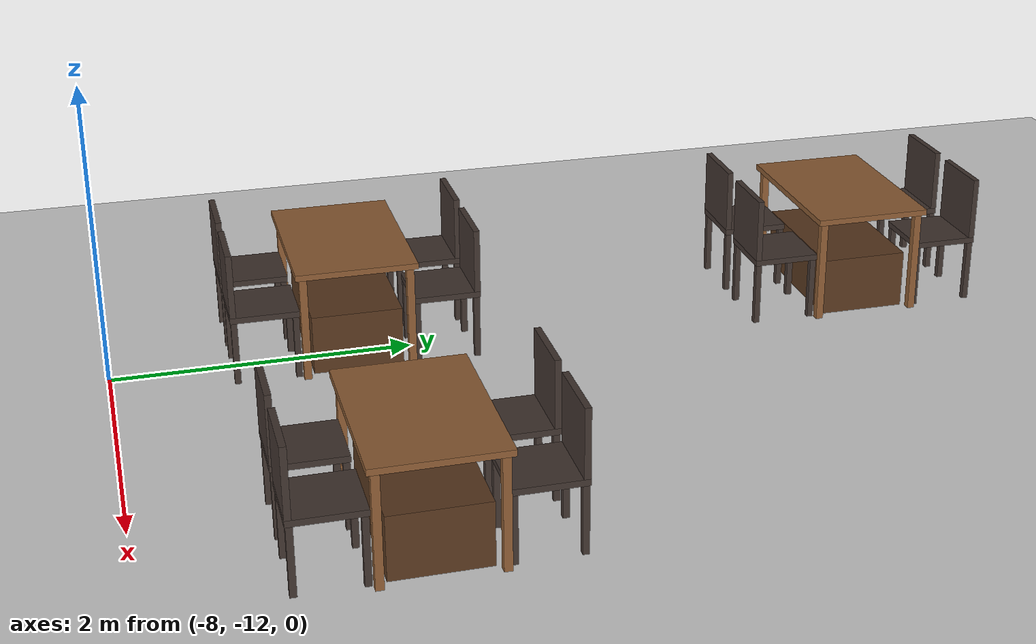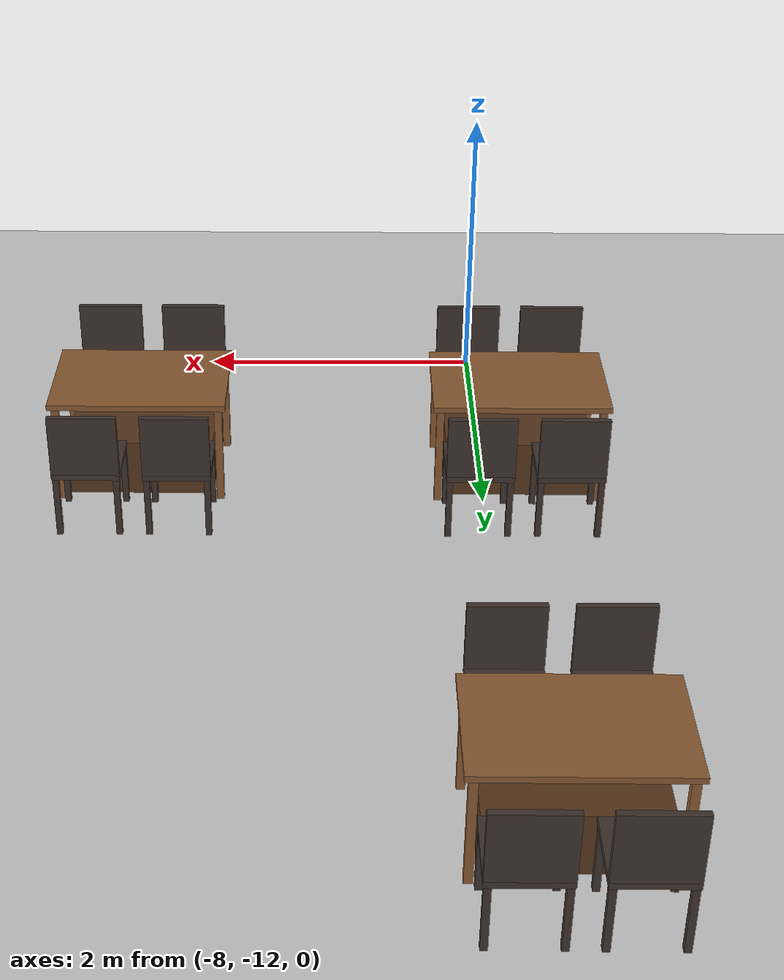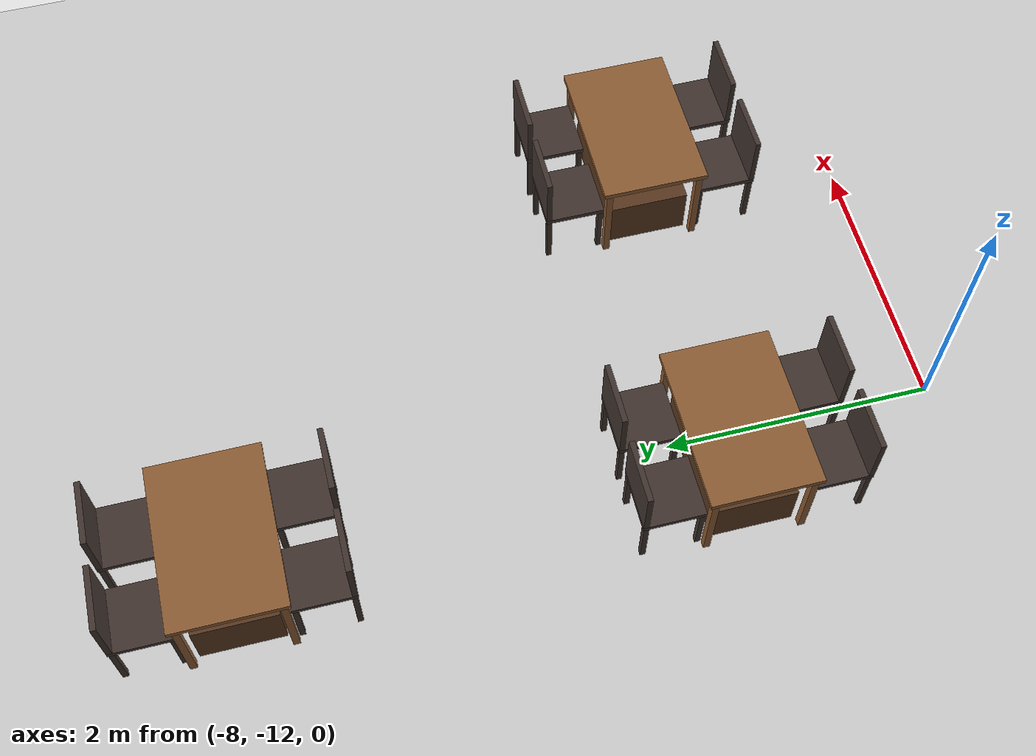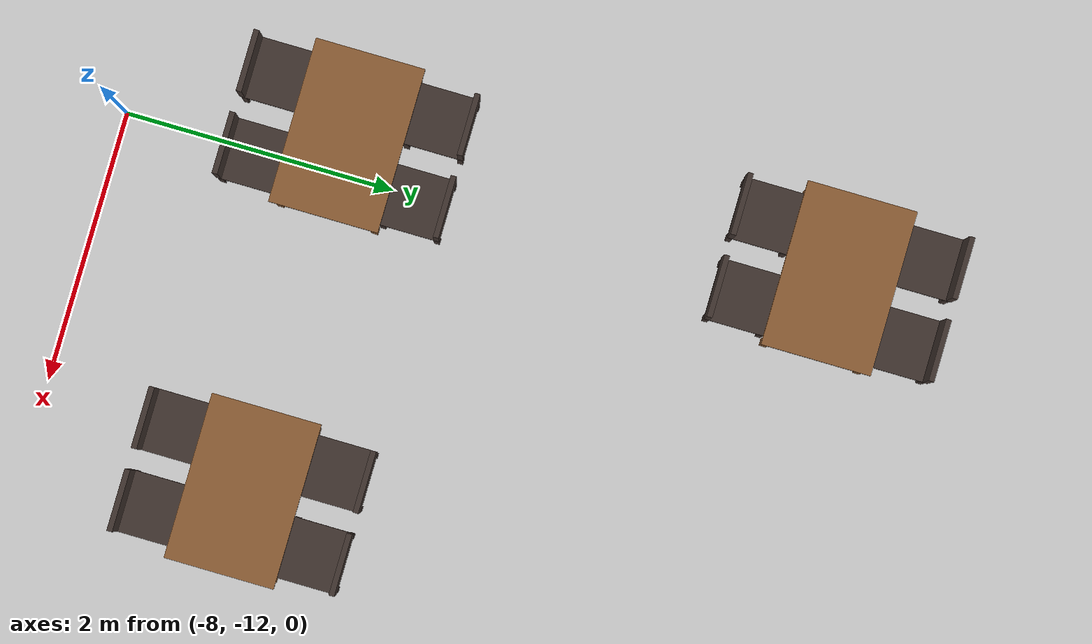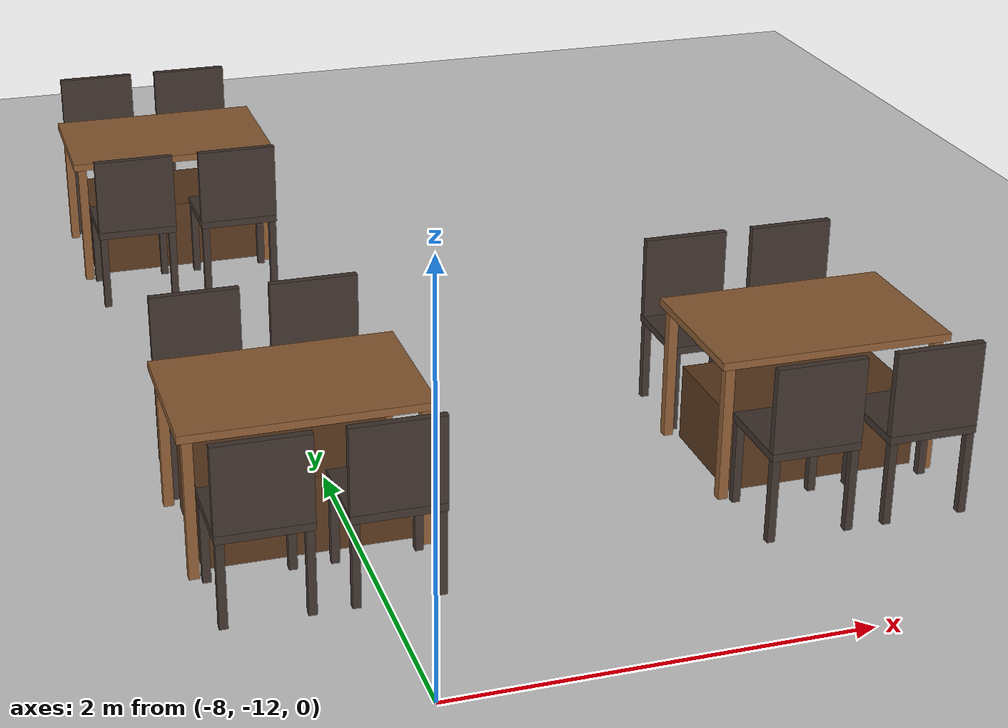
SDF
<sdf version="1.6">
 <world name="restaurant">
  <model name="ground_plane">
   <static>1</static>
   <link name="link">
    <collision name="collision">
     <geometry><plane><normal>0 0 1</normal><size>100 100</size></plane></geometry>
     <surface><friction><ode><mu>100</mu><mu2>50</mu2></ode></friction></surface>
    </collision>
    <visual name="visual">
     <cast_shadows>0</cast_shadows>
     <geometry><plane><normal>0 0 1</normal><size>100 100</size></plane></geometry>
     <material>
      <script><uri>file://media/materials/scripts/gazebo.material</uri><name>Gazebo/Grey</name></script>
     </material>
    </visual>
   </link>
  </model>
  <model name="table_12">
   <static>true</static>
   <pose>-8.2360 -6.7909 0 0 0 0</pose>
   <link name="link">
    <collision name="base_collision">
     <pose>0.0000 0.0000 0.2000 0 0 0</pose>
     <geometry><box><size>1.0000 0.6000 0.4000</size></box></geometry>
    </collision>
    <visual name="base_visual">
     <pose>0.0000 0.0000 0.2000 0 0 0</pose>
     <geometry><box><size>1.0000 0.6000 0.4000</size></box></geometry>
     <material>
      <ambient>0.35 0.22 0.12 1</ambient>
      <diffuse>0.35 0.22 0.12 1</diffuse>
      <specular>0.05 0.05 0.05 1</specular>
     </material>
    </visual>
    <collision name="top_collision">
     <pose>0.0000 0.0000 0.7300 0 0 0</pose>
     <geometry><box><size>1.2000 0.8000 0.0400</size></box></geometry>
    </collision>
    <visual name="top_visual">
     <pose>0.0000 0.0000 0.7300 0 0 0</pose>
     <geometry><box><size>1.2000 0.8000 0.0400</size></box></geometry>
     <material>
      <ambient>0.55 0.36 0.2 1</ambient>
      <diffuse>0.55 0.36 0.2 1</diffuse>
      <specular>0.05 0.05 0.05 1</specular>
     </material>
    </visual>
    <collision name="leg0_collision">
     <pose>0.5500 0.3500 0.3550 0 0 0</pose>
     <geometry><box><size>0.0500 0.0500 0.7100</size></box></geometry>
    </collision>
    <visual name="leg0_visual">
     <pose>0.5500 0.3500 0.3550 0 0 0</pose>
     <geometry><box><size>0.0500 0.0500 0.7100</size></box></geometry>
     <material>
      <ambient>0.55 0.36 0.2 1</ambient>
      <diffuse>0.55 0.36 0.2 1</diffuse>
      <specular>0.05 0.05 0.05 1</specular>
     </material>
    </visual>
    <collision name="leg1_collision">
     <pose>0.5500 -0.3500 0.3550 0 0 0</pose>
     <geometry><box><size>0.0500 0.0500 0.7100</size></box></geometry>
    </collision>
    <visual name="leg1_visual">
     <pose>0.5500 -0.3500 0.3550 0 0 0</pose>
     <geometry><box><size>0.0500 0.0500 0.7100</size></box></geometry>
     <material>
      <ambient>0.55 0.36 0.2 1</ambient>
      <diffuse>0.55 0.36 0.2 1</diffuse>
      <specular>0.05 0.05 0.05 1</specular>
     </material>
    </visual>
    <collision name="leg2_collision">
     <pose>-0.5500 0.3500 0.3550 0 0 0</pose>
     <geometry><box><size>0.0500 0.0500 0.7100</size></box></geometry>
    </collision>
    <visual name="leg2_visual">
     <pose>-0.5500 0.3500 0.3550 0 0 0</pose>
     <geometry><box><size>0.0500 0.0500 0.7100</size></box></geometry>
     <material>
      <ambient>0.55 0.36 0.2 1</ambient>
      <diffuse>0.55 0.36 0.2 1</diffuse>
      <specular>0.05 0.05 0.05 1</specular>
     </material>
    </visual>
    <collision name="leg3_collision">
     <pose>-0.5500 -0.3500 0.3550 0 0 0</pose>
     <geometry><box><size>0.0500 0.0500 0.7100</size></box></geometry>
    </collision>
    <visual name="leg3_visual">
     <pose>-0.5500 -0.3500 0.3550 0 0 0</pose>
     <geometry><box><size>0.0500 0.0500 0.7100</size></box></geometry>
     <material>
      <ambient>0.55 0.36 0.2 1</ambient>
      <diffuse>0.55 0.36 0.2 1</diffuse>
      <specular>0.05 0.05 0.05 1</specular>
     </material>
    </visual>
    <collision name="chair0_seat_collision">
     <pose>-0.3000 0.6000 0.4500 0 0 0</pose>
     <geometry><box><size>0.4500 0.4500 0.0400</size></box></geometry>
    </collision>
    <visual name="chair0_seat_visual">
     <pose>-0.3000 0.6000 0.4500 0 0 0</pose>
     <geometry><box><size>0.4500 0.4500 0.0400</size></box></geometry>
     <material>
      <ambient>0.25 0.2 0.18 1</ambient>
      <diffuse>0.25 0.2 0.18 1</diffuse>
      <specular>0.05 0.05 0.05 1</specular>
     </material>
    </visual>
    <collision name="chair0_leg0_collision">
     <pose>-0.1000 0.8000 0.2150 0 0 0</pose>
     <geometry><box><size>0.0400 0.0400 0.4300</size></box></geometry>
    </collision>
    <visual name="chair0_leg0_visual">
     <pose>-0.1000 0.8000 0.2150 0 0 0</pose>
     <geometry><box><size>0.0400 0.0400 0.4300</size></box></geometry>
     <material>
      <ambient>0.25 0.2 0.18 1</ambient>
      <diffuse>0.25 0.2 0.18 1</diffuse>
      <specular>0.05 0.05 0.05 1</specular>
     </material>
    </visual>
    <collision name="chair0_leg1_collision">
     <pose>-0.1000 0.4000 0.2150 0 0 0</pose>
     <geometry><box><size>0.0400 0.0400 0.4300</size></box></geometry>
    </collision>
    <visual name="chair0_leg1_visual">
     <pose>-0.1000 0.4000 0.2150 0 0 0</pose>
     <geometry><box><size>0.0400 0.0400 0.4300</size></box></geometry>
     <material>
      <ambient>0.25 0.2 0.18 1</ambient>
      <diffuse>0.25 0.2 0.18 1</diffuse>
      <specular>0.05 0.05 0.05 1</specular>
     </material>
    </visual>
    <collision name="chair0_leg2_collision">
     <pose>-0.5000 0.8000 0.2150 0 0 0</pose>
     <geometry><box><size>0.0400 0.0400 0.4300</size></box></geometry>
    </collision>
    <visual name="chair0_leg2_visual">
     <pose>-0.5000 0.8000 0.2150 0 0 0</pose>
     <geometry><box><size>0.0400 0.0400 0.4300</size></box></geometry>
     <material>
      <ambient>0.25 0.2 0.18 1</ambient>
      <diffuse>0.25 0.2 0.18 1</diffuse>
      <specular>0.05 0.05 0.05 1</specular>
     </material>
    </visual>
    <collision name="chair0_leg3_collision">
     <pose>-0.5000 0.4000 0.2150 0 0 0</pose>
     <geometry><box><size>0.0400 0.0400 0.4300</size></box></geometry>
    </collision>
    <visual name="chair0_leg3_visual">
     <pose>-0.5000 0.4000 0.2150 0 0 0</pose>
     <geometry><box><size>0.0400 0.0400 0.4300</size></box></geometry>
     <material>
      <ambient>0.25 0.2 0.18 1</ambient>
      <diffuse>0.25 0.2 0.18 1</diffuse>
      <specular>0.05 0.05 0.05 1</specular>
     </material>
    </visual>
    <collision name="chair0_back_collision">
     <pose>-0.3000 0.8050 0.6850 0 0 0</pose>
     <geometry><box><size>0.4500 0.0400 0.4300</size></box></geometry>
    </collision>
    <visual name="chair0_back_visual">
     <pose>-0.3000 0.8050 0.6850 0 0 0</pose>
     <geometry><box><size>0.4500 0.0400 0.4300</size></box></geometry>
     <material>
      <ambient>0.25 0.2 0.18 1</ambient>
      <diffuse>0.25 0.2 0.18 1</diffuse>
      <specular>0.05 0.05 0.05 1</specular>
     </material>
    </visual>
    <collision name="chair1_seat_collision">
     <pose>-0.3000 -0.6000 0.4500 0 0 0</pose>
     <geometry><box><size>0.4500 0.4500 0.0400</size></box></geometry>
    </collision>
    <visual name="chair1_seat_visual">
     <pose>-0.3000 -0.6000 0.4500 0 0 0</pose>
     <geometry><box><size>0.4500 0.4500 0.0400</size></box></geometry>
     <material>
      <ambient>0.25 0.2 0.18 1</ambient>
      <diffuse>0.25 0.2 0.18 1</diffuse>
      <specular>0.05 0.05 0.05 1</specular>
     </material>
    </visual>
    <collision name="chair1_leg0_collision">
     <pose>-0.1000 -0.4000 0.2150 0 0 0</pose>
     <geometry><box><size>0.0400 0.0400 0.4300</size></box></geometry>
    </collision>
    <visual name="chair1_leg0_visual">
     <pose>-0.1000 -0.4000 0.2150 0 0 0</pose>
     <geometry><box><size>0.0400 0.0400 0.4300</size></box></geometry>
     <material>
      <ambient>0.25 0.2 0.18 1</ambient>
      <diffuse>0.25 0.2 0.18 1</diffuse>
      <specular>0.05 0.05 0.05 1</specular>
     </material>
    </visual>
    <collision name="chair1_leg1_collision">
     <pose>-0.1000 -0.8000 0.2150 0 0 0</pose>
     <geometry><box><size>0.0400 0.0400 0.4300</size></box></geometry>
    </collision>
    <visual name="chair1_leg1_visual">
     <pose>-0.1000 -0.8000 0.2150 0 0 0</pose>
     <geometry><box><size>0.0400 0.0400 0.4300</size></box></geometry>
     <material>
      <ambient>0.25 0.2 0.18 1</ambient>
      <diffuse>0.25 0.2 0.18 1</diffuse>
      <specular>0.05 0.05 0.05 1</specular>
     </material>
    </visual>
    <collision name="chair1_leg2_collision">
     <pose>-0.5000 -0.4000 0.2150 0 0 0</pose>
     <geometry><box><size>0.0400 0.0400 0.4300</size></box></geometry>
    </collision>
    <visual name="chair1_leg2_visual">
     <pose>-0.5000 -0.4000 0.2150 0 0 0</pose>
     <geometry><box><size>0.0400 0.0400 0.4300</size></box></geometry>
     <material>
      <ambient>0.25 0.2 0.18 1</ambient>
      <diffuse>0.25 0.2 0.18 1</diffuse>
      <specular>0.05 0.05 0.05 1</specular>
     </material>
    </visual>
    <collision name="chair1_leg3_collision">
     <pose>-0.5000 -0.8000 0.2150 0 0 0</pose>
     <geometry><box><size>0.0400 0.0400 0.4300</size></box></geometry>
    </collision>
    <visual name="chair1_leg3_visual">
     <pose>-0.5000 -0.8000 0.2150 0 0 0</pose>
     <geometry><box><size>0.0400 0.0400 0.4300</size></box></geometry>
     <material>
      <ambient>0.25 0.2 0.18 1</ambient>
      <diffuse>0.25 0.2 0.18 1</diffuse>
      <specular>0.05 0.05 0.05 1</specular>
     </material>
    </visual>
    <collision name="chair1_back_collision">
     <pose>-0.3000 -0.8050 0.6850 0 0 0</pose>
     <geometry><box><size>0.4500 0.0400 0.4300</size></box></geometry>
    </collision>
    <visual name="chair1_back_visual">
     <pose>-0.3000 -0.8050 0.6850 0 0 0</pose>
     <geometry><box><size>0.4500 0.0400 0.4300</size></box></geometry>
     <material>
      <ambient>0.25 0.2 0.18 1</ambient>
      <diffuse>0.25 0.2 0.18 1</diffuse>
      <specular>0.05 0.05 0.05 1</specular>
     </material>
    </visual>
    <collision name="chair2_seat_collision">
     <pose>0.3000 0.6000 0.4500 0 0 0</pose>
     <geometry><box><size>0.4500 0.4500 0.0400</size></box></geometry>
    </collision>
    <visual name="chair2_seat_visual">
     <pose>0.3000 0.6000 0.4500 0 0 0</pose>
     <geometry><box><size>0.4500 0.4500 0.0400</size></box></geometry>
     <material>
      <ambient>0.25 0.2 0.18 1</ambient>
      <diffuse>0.25 0.2 0.18 1</diffuse>
      <specular>0.05 0.05 0.05 1</specular>
     </material>
    </visual>
    <collision name="chair2_leg0_collision">
     <pose>0.5000 0.8000 0.2150 0 0 0</pose>
     <geometry><box><size>0.0400 0.0400 0.4300</size></box></geometry>
    </collision>
    <visual name="chair2_leg0_visual">
     <pose>0.5000 0.8000 0.2150 0 0 0</pose>
     <geometry><box><size>0.0400 0.0400 0.4300</size></box></geometry>
     <material>
      <ambient>0.25 0.2 0.18 1</ambient>
      <diffuse>0.25 0.2 0.18 1</diffuse>
      <specular>0.05 0.05 0.05 1</specular>
     </material>
    </visual>
    <collision name="chair2_leg1_collision">
     <pose>0.5000 0.4000 0.2150 0 0 0</pose>
     <geometry><box><size>0.0400 0.0400 0.4300</size></box></geometry>
    </collision>
    <visual name="chair2_leg1_visual">
     <pose>0.5000 0.4000 0.2150 0 0 0</pose>
     <geometry><box><size>0.0400 0.0400 0.4300</size></box></geometry>
     <material>
      <ambient>0.25 0.2 0.18 1</ambient>
      <diffuse>0.25 0.2 0.18 1</diffuse>
      <specular>0.05 0.05 0.05 1</specular>
     </material>
    </visual>
    <collision name="chair2_leg2_collision">
     <pose>0.1000 0.8000 0.2150 0 0 0</pose>
     <geometry><box><size>0.0400 0.0400 0.4300</size></box></geometry>
    </collision>
    <visual name="chair2_leg2_visual">
     <pose>0.1000 0.8000 0.2150 0 0 0</pose>
     <geometry><box><size>0.0400 0.0400 0.4300</size></box></geometry>
     <material>
      <ambient>0.25 0.2 0.18 1</ambient>
      <diffuse>0.25 0.2 0.18 1</diffuse>
      <specular>0.05 0.05 0.05 1</specular>
     </material>
    </visual>
    <collision name="chair2_leg3_collision">
     <pose>0.1000 0.4000 0.2150 0 0 0</pose>
     <geometry><box><size>0.0400 0.0400 0.4300</size></box></geometry>
    </collision>
    <visual name="chair2_leg3_visual">
     <pose>0.1000 0.4000 0.2150 0 0 0</pose>
     <geometry><box><size>0.0400 0.0400 0.4300</size></box></geometry>
     <material>
      <ambient>0.25 0.2 0.18 1</ambient>
      <diffuse>0.25 0.2 0.18 1</diffuse>
      <specular>0.05 0.05 0.05 1</specular>
     </material>
    </visual>
    <collision name="chair2_back_collision">
     <pose>0.3000 0.8050 0.6850 0 0 0</pose>
     <geometry><box><size>0.4500 0.0400 0.4300</size></box></geometry>
    </collision>
    <visual name="chair2_back_visual">
     <pose>0.3000 0.8050 0.6850 0 0 0</pose>
     <geometry><box><size>0.4500 0.0400 0.4300</size></box></geometry>
     <material>
      <ambient>0.25 0.2 0.18 1</ambient>
      <diffuse>0.25 0.2 0.18 1</diffuse>
      <specular>0.05 0.05 0.05 1</specular>
     </material>
    </visual>
    <collision name="chair3_seat_collision">
     <pose>0.3000 -0.6000 0.4500 0 0 0</pose>
     <geometry><box><size>0.4500 0.4500 0.0400</size></box></geometry>
    </collision>
    <visual name="chair3_seat_visual">
     <pose>0.3000 -0.6000 0.4500 0 0 0</pose>
     <geometry><box><size>0.4500 0.4500 0.0400</size></box></geometry>
     <material>
      <ambient>0.25 0.2 0.18 1</ambient>
      <diffuse>0.25 0.2 0.18 1</diffuse>
      <specular>0.05 0.05 0.05 1</specular>
     </material>
    </visual>
    <collision name="chair3_leg0_collision">
     <pose>0.5000 -0.4000 0.2150 0 0 0</pose>
     <geometry><box><size>0.0400 0.0400 0.4300</size></box></geometry>
    </collision>
    <visual name="chair3_leg0_visual">
     <pose>0.5000 -0.4000 0.2150 0 0 0</pose>
     <geometry><box><size>0.0400 0.0400 0.4300</size></box></geometry>
     <material>
      <ambient>0.25 0.2 0.18 1</ambient>
      <diffuse>0.25 0.2 0.18 1</diffuse>
      <specular>0.05 0.05 0.05 1</specular>
     </material>
    </visual>
    <collision name="chair3_leg1_collision">
     <pose>0.5000 -0.8000 0.2150 0 0 0</pose>
     <geometry><box><size>0.0400 0.0400 0.4300</size></box></geometry>
    </collision>
    <visual name="chair3_leg1_visual">
     <pose>0.5000 -0.8000 0.2150 0 0 0</pose>
     <geometry><box><size>0.0400 0.0400 0.4300</size></box></geometry>
     <material>
      <ambient>0.25 0.2 0.18 1</ambient>
      <diffuse>0.25 0.2 0.18 1</diffuse>
      <specular>0.05 0.05 0.05 1</specular>
     </material>
    </visual>
    <collision name="chair3_leg2_collision">
     <pose>0.1000 -0.4000 0.2150 0 0 0</pose>
     <geometry><box><size>0.0400 0.0400 0.4300</size></box></geometry>
    </collision>
    <visual name="chair3_leg2_visual">
     <pose>0.1000 -0.4000 0.2150 0 0 0</pose>
     <geometry><box><size>0.0400 0.0400 0.4300</size></box></geometry>
     <material>
      <ambient>0.25 0.2 0.18 1</ambient>
      <diffuse>0.25 0.2 0.18 1</diffuse>
      <specular>0.05 0.05 0.05 1</specular>
     </material>
    </visual>
    <collision name="chair3_leg3_collision">
     <pose>0.1000 -0.8000 0.2150 0 0 0</pose>
     <geometry><box><size>0.0400 0.0400 0.4300</size></box></geometry>
    </collision>
    <visual name="chair3_leg3_visual">
     <pose>0.1000 -0.8000 0.2150 0 0 0</pose>
     <geometry><box><size>0.0400 0.0400 0.4300</size></box></geometry>
     <material>
      <ambient>0.25 0.2 0.18 1</ambient>
      <diffuse>0.25 0.2 0.18 1</diffuse>
      <specular>0.05 0.05 0.05 1</specular>
     </material>
    </visual>
    <collision name="chair3_back_collision">
     <pose>0.3000 -0.8050 0.6850 0 0 0</pose>
     <geometry><box><size>0.4500 0.0400 0.4300</size></box></geometry>
    </collision>
    <visual name="chair3_back_visual">
     <pose>0.3000 -0.8050 0.6850 0 0 0</pose>
     <geometry><box><size>0.4500 0.0400 0.4300</size></box></geometry>
     <material>
      <ambient>0.25 0.2 0.18 1</ambient>
      <diffuse>0.25 0.2 0.18 1</diffuse>
      <specular>0.05 0.05 0.05 1</specular>
     </material>
    </visual>
   </link>
  </model>
  <model name="table_18">
   <static>true</static>
   <pose>-8.2360 -10.3909 0 0 0 0</pose>
   <link name="link">
    <collision name="base_collision">
     <pose>0.0000 0.0000 0.2000 0 0 0</pose>
     <geometry><box><size>1.0000 0.6000 0.4000</size></box></geometry>
    </collision>
    <visual name="base_visual">
     <pose>0.0000 0.0000 0.2000 0 0 0</pose>
     <geometry><box><size>1.0000 0.6000 0.4000</size></box></geometry>
     <material>
      <ambient>0.35 0.22 0.12 1</ambient>
      <diffuse>0.35 0.22 0.12 1</diffuse>
      <specular>0.05 0.05 0.05 1</specular>
     </material>
    </visual>
    <collision name="top_collision">
     <pose>0.0000 0.0000 0.7300 0 0 0</pose>
     <geometry><box><size>1.2000 0.8000 0.0400</size></box></geometry>
    </collision>
    <visual name="top_visual">
     <pose>0.0000 0.0000 0.7300 0 0 0</pose>
     <geometry><box><size>1.2000 0.8000 0.0400</size></box></geometry>
     <material>
      <ambient>0.55 0.36 0.2 1</ambient>
      <diffuse>0.55 0.36 0.2 1</diffuse>
      <specular>0.05 0.05 0.05 1</specular>
     </material>
    </visual>
    <collision name="leg0_collision">
     <pose>0.5500 0.3500 0.3550 0 0 0</pose>
     <geometry><box><size>0.0500 0.0500 0.7100</size></box></geometry>
    </collision>
    <visual name="leg0_visual">
     <pose>0.5500 0.3500 0.3550 0 0 0</pose>
     <geometry><box><size>0.0500 0.0500 0.7100</size></box></geometry>
     <material>
      <ambient>0.55 0.36 0.2 1</ambient>
      <diffuse>0.55 0.36 0.2 1</diffuse>
      <specular>0.05 0.05 0.05 1</specular>
     </material>
    </visual>
    <collision name="leg1_collision">
     <pose>0.5500 -0.3500 0.3550 0 0 0</pose>
     <geometry><box><size>0.0500 0.0500 0.7100</size></box></geometry>
    </collision>
    <visual name="leg1_visual">
     <pose>0.5500 -0.3500 0.3550 0 0 0</pose>
     <geometry><box><size>0.0500 0.0500 0.7100</size></box></geometry>
     <material>
      <ambient>0.55 0.36 0.2 1</ambient>
      <diffuse>0.55 0.36 0.2 1</diffuse>
      <specular>0.05 0.05 0.05 1</specular>
     </material>
    </visual>
    <collision name="leg2_collision">
     <pose>-0.5500 0.3500 0.3550 0 0 0</pose>
     <geometry><box><size>0.0500 0.0500 0.7100</size></box></geometry>
    </collision>
    <visual name="leg2_visual">
     <pose>-0.5500 0.3500 0.3550 0 0 0</pose>
     <geometry><box><size>0.0500 0.0500 0.7100</size></box></geometry>
     <material>
      <ambient>0.55 0.36 0.2 1</ambient>
      <diffuse>0.55 0.36 0.2 1</diffuse>
      <specular>0.05 0.05 0.05 1</specular>
     </material>
    </visual>
    <collision name="leg3_collision">
     <pose>-0.5500 -0.3500 0.3550 0 0 0</pose>
     <geometry><box><size>0.0500 0.0500 0.7100</size></box></geometry>
    </collision>
    <visual name="leg3_visual">
     <pose>-0.5500 -0.3500 0.3550 0 0 0</pose>
     <geometry><box><size>0.0500 0.0500 0.7100</size></box></geometry>
     <material>
      <ambient>0.55 0.36 0.2 1</ambient>
      <diffuse>0.55 0.36 0.2 1</diffuse>
      <specular>0.05 0.05 0.05 1</specular>
     </material>
    </visual>
    <collision name="chair0_seat_collision">
     <pose>-0.3000 0.6000 0.4500 0 0 0</pose>
     <geometry><box><size>0.4500 0.4500 0.0400</size></box></geometry>
    </collision>
    <visual name="chair0_seat_visual">
     <pose>-0.3000 0.6000 0.4500 0 0 0</pose>
     <geometry><box><size>0.4500 0.4500 0.0400</size></box></geometry>
     <material>
      <ambient>0.25 0.2 0.18 1</ambient>
      <diffuse>0.25 0.2 0.18 1</diffuse>
      <specular>0.05 0.05 0.05 1</specular>
     </material>
    </visual>
    <collision name="chair0_leg0_collision">
     <pose>-0.1000 0.8000 0.2150 0 0 0</pose>
     <geometry><box><size>0.0400 0.0400 0.4300</size></box></geometry>
    </collision>
    <visual name="chair0_leg0_visual">
     <pose>-0.1000 0.8000 0.2150 0 0 0</pose>
     <geometry><box><size>0.0400 0.0400 0.4300</size></box></geometry>
     <material>
      <ambient>0.25 0.2 0.18 1</ambient>
      <diffuse>0.25 0.2 0.18 1</diffuse>
      <specular>0.05 0.05 0.05 1</specular>
     </material>
    </visual>
    <collision name="chair0_leg1_collision">
     <pose>-0.1000 0.4000 0.2150 0 0 0</pose>
     <geometry><box><size>0.0400 0.0400 0.4300</size></box></geometry>
    </collision>
    <visual name="chair0_leg1_visual">
     <pose>-0.1000 0.4000 0.2150 0 0 0</pose>
     <geometry><box><size>0.0400 0.0400 0.4300</size></box></geometry>
     <material>
      <ambient>0.25 0.2 0.18 1</ambient>
      <diffuse>0.25 0.2 0.18 1</diffuse>
      <specular>0.05 0.05 0.05 1</specular>
     </material>
    </visual>
    <collision name="chair0_leg2_collision">
     <pose>-0.5000 0.8000 0.2150 0 0 0</pose>
     <geometry><box><size>0.0400 0.0400 0.4300</size></box></geometry>
    </collision>
    <visual name="chair0_leg2_visual">
     <pose>-0.5000 0.8000 0.2150 0 0 0</pose>
     <geometry><box><size>0.0400 0.0400 0.4300</size></box></geometry>
     <material>
      <ambient>0.25 0.2 0.18 1</ambient>
      <diffuse>0.25 0.2 0.18 1</diffuse>
      <specular>0.05 0.05 0.05 1</specular>
     </material>
    </visual>
    <collision name="chair0_leg3_collision">
     <pose>-0.5000 0.4000 0.2150 0 0 0</pose>
     <geometry><box><size>0.0400 0.0400 0.4300</size></box></geometry>
    </collision>
    <visual name="chair0_leg3_visual">
     <pose>-0.5000 0.4000 0.2150 0 0 0</pose>
     <geometry><box><size>0.0400 0.0400 0.4300</size></box></geometry>
     <material>
      <ambient>0.25 0.2 0.18 1</ambient>
      <diffuse>0.25 0.2 0.18 1</diffuse>
      <specular>0.05 0.05 0.05 1</specular>
     </material>
    </visual>
    <collision name="chair0_back_collision">
     <pose>-0.3000 0.8050 0.6850 0 0 0</pose>
     <geometry><box><size>0.4500 0.0400 0.4300</size></box></geometry>
    </collision>
    <visual name="chair0_back_visual">
     <pose>-0.3000 0.8050 0.6850 0 0 0</pose>
     <geometry><box><size>0.4500 0.0400 0.4300</size></box></geometry>
     <material>
      <ambient>0.25 0.2 0.18 1</ambient>
      <diffuse>0.25 0.2 0.18 1</diffuse>
      <specular>0.05 0.05 0.05 1</specular>
     </material>
    </visual>
    <collision name="chair1_seat_collision">
     <pose>-0.3000 -0.6000 0.4500 0 0 0</pose>
     <geometry><box><size>0.4500 0.4500 0.0400</size></box></geometry>
    </collision>
    <visual name="chair1_seat_visual">
     <pose>-0.3000 -0.6000 0.4500 0 0 0</pose>
     <geometry><box><size>0.4500 0.4500 0.0400</size></box></geometry>
     <material>
      <ambient>0.25 0.2 0.18 1</ambient>
      <diffuse>0.25 0.2 0.18 1</diffuse>
      <specular>0.05 0.05 0.05 1</specular>
     </material>
    </visual>
    <collision name="chair1_leg0_collision">
     <pose>-0.1000 -0.4000 0.2150 0 0 0</pose>
     <geometry><box><size>0.0400 0.0400 0.4300</size></box></geometry>
    </collision>
    <visual name="chair1_leg0_visual">
     <pose>-0.1000 -0.4000 0.2150 0 0 0</pose>
     <geometry><box><size>0.0400 0.0400 0.4300</size></box></geometry>
     <material>
      <ambient>0.25 0.2 0.18 1</ambient>
      <diffuse>0.25 0.2 0.18 1</diffuse>
      <specular>0.05 0.05 0.05 1</specular>
     </material>
    </visual>
    <collision name="chair1_leg1_collision">
     <pose>-0.1000 -0.8000 0.2150 0 0 0</pose>
     <geometry><box><size>0.0400 0.0400 0.4300</size></box></geometry>
    </collision>
    <visual name="chair1_leg1_visual">
     <pose>-0.1000 -0.8000 0.2150 0 0 0</pose>
     <geometry><box><size>0.0400 0.0400 0.4300</size></box></geometry>
     <material>
      <ambient>0.25 0.2 0.18 1</ambient>
      <diffuse>0.25 0.2 0.18 1</diffuse>
      <specular>0.05 0.05 0.05 1</specular>
     </material>
    </visual>
    <collision name="chair1_leg2_collision">
     <pose>-0.5000 -0.4000 0.2150 0 0 0</pose>
     <geometry><box><size>0.0400 0.0400 0.4300</size></box></geometry>
    </collision>
    <visual name="chair1_leg2_visual">
     <pose>-0.5000 -0.4000 0.2150 0 0 0</pose>
     <geometry><box><size>0.0400 0.0400 0.4300</size></box></geometry>
     <material>
      <ambient>0.25 0.2 0.18 1</ambient>
      <diffuse>0.25 0.2 0.18 1</diffuse>
      <specular>0.05 0.05 0.05 1</specular>
     </material>
    </visual>
    <collision name="chair1_leg3_collision">
     <pose>-0.5000 -0.8000 0.2150 0 0 0</pose>
     <geometry><box><size>0.0400 0.0400 0.4300</size></box></geometry>
    </collision>
    <visual name="chair1_leg3_visual">
     <pose>-0.5000 -0.8000 0.2150 0 0 0</pose>
     <geometry><box><size>0.0400 0.0400 0.4300</size></box></geometry>
     <material>
      <ambient>0.25 0.2 0.18 1</ambient>
      <diffuse>0.25 0.2 0.18 1</diffuse>
      <specular>0.05 0.05 0.05 1</specular>
     </material>
    </visual>
    <collision name="chair1_back_collision">
     <pose>-0.3000 -0.8050 0.6850 0 0 0</pose>
     <geometry><box><size>0.4500 0.0400 0.4300</size></box></geometry>
    </collision>
    <visual name="chair1_back_visual">
     <pose>-0.3000 -0.8050 0.6850 0 0 0</pose>
     <geometry><box><size>0.4500 0.0400 0.4300</size></box></geometry>
     <material>
      <ambient>0.25 0.2 0.18 1</ambient>
      <diffuse>0.25 0.2 0.18 1</diffuse>
      <specular>0.05 0.05 0.05 1</specular>
     </material>
    </visual>
    <collision name="chair2_seat_collision">
     <pose>0.3000 0.6000 0.4500 0 0 0</pose>
     <geometry><box><size>0.4500 0.4500 0.0400</size></box></geometry>
    </collision>
    <visual name="chair2_seat_visual">
     <pose>0.3000 0.6000 0.4500 0 0 0</pose>
     <geometry><box><size>0.4500 0.4500 0.0400</size></box></geometry>
     <material>
      <ambient>0.25 0.2 0.18 1</ambient>
      <diffuse>0.25 0.2 0.18 1</diffuse>
      <specular>0.05 0.05 0.05 1</specular>
     </material>
    </visual>
    <collision name="chair2_leg0_collision">
     <pose>0.5000 0.8000 0.2150 0 0 0</pose>
     <geometry><box><size>0.0400 0.0400 0.4300</size></box></geometry>
    </collision>
    <visual name="chair2_leg0_visual">
     <pose>0.5000 0.8000 0.2150 0 0 0</pose>
     <geometry><box><size>0.0400 0.0400 0.4300</size></box></geometry>
     <material>
      <ambient>0.25 0.2 0.18 1</ambient>
      <diffuse>0.25 0.2 0.18 1</diffuse>
      <specular>0.05 0.05 0.05 1</specular>
     </material>
    </visual>
    <collision name="chair2_leg1_collision">
     <pose>0.5000 0.4000 0.2150 0 0 0</pose>
     <geometry><box><size>0.0400 0.0400 0.4300</size></box></geometry>
    </collision>
    <visual name="chair2_leg1_visual">
     <pose>0.5000 0.4000 0.2150 0 0 0</pose>
     <geometry><box><size>0.0400 0.0400 0.4300</size></box></geometry>
     <material>
      <ambient>0.25 0.2 0.18 1</ambient>
      <diffuse>0.25 0.2 0.18 1</diffuse>
      <specular>0.05 0.05 0.05 1</specular>
     </material>
    </visual>
    <collision name="chair2_leg2_collision">
     <pose>0.1000 0.8000 0.2150 0 0 0</pose>
     <geometry><box><size>0.0400 0.0400 0.4300</size></box></geometry>
    </collision>
    <visual name="chair2_leg2_visual">
     <pose>0.1000 0.8000 0.2150 0 0 0</pose>
     <geometry><box><size>0.0400 0.0400 0.4300</size></box></geometry>
     <material>
      <ambient>0.25 0.2 0.18 1</ambient>
      <diffuse>0.25 0.2 0.18 1</diffuse>
      <specular>0.05 0.05 0.05 1</specular>
     </material>
    </visual>
    <collision name="chair2_leg3_collision">
     <pose>0.1000 0.4000 0.2150 0 0 0</pose>
     <geometry><box><size>0.0400 0.0400 0.4300</size></box></geometry>
    </collision>
    <visual name="chair2_leg3_visual">
     <pose>0.1000 0.4000 0.2150 0 0 0</pose>
     <geometry><box><size>0.0400 0.0400 0.4300</size></box></geometry>
     <material>
      <ambient>0.25 0.2 0.18 1</ambient>
      <diffuse>0.25 0.2 0.18 1</diffuse>
      <specular>0.05 0.05 0.05 1</specular>
     </material>
    </visual>
    <collision name="chair2_back_collision">
     <pose>0.3000 0.8050 0.6850 0 0 0</pose>
     <geometry><box><size>0.4500 0.0400 0.4300</size></box></geometry>
    </collision>
    <visual name="chair2_back_visual">
     <pose>0.3000 0.8050 0.6850 0 0 0</pose>
     <geometry><box><size>0.4500 0.0400 0.4300</size></box></geometry>
     <material>
      <ambient>0.25 0.2 0.18 1</ambient>
      <diffuse>0.25 0.2 0.18 1</diffuse>
      <specular>0.05 0.05 0.05 1</specular>
     </material>
    </visual>
    <collision name="chair3_seat_collision">
     <pose>0.3000 -0.6000 0.4500 0 0 0</pose>
     <geometry><box><size>0.4500 0.4500 0.0400</size></box></geometry>
    </collision>
    <visual name="chair3_seat_visual">
     <pose>0.3000 -0.6000 0.4500 0 0 0</pose>
     <geometry><box><size>0.4500 0.4500 0.0400</size></box></geometry>
     <material>
      <ambient>0.25 0.2 0.18 1</ambient>
      <diffuse>0.25 0.2 0.18 1</diffuse>
      <specular>0.05 0.05 0.05 1</specular>
     </material>
    </visual>
    <collision name="chair3_leg0_collision">
     <pose>0.5000 -0.4000 0.2150 0 0 0</pose>
     <geometry><box><size>0.0400 0.0400 0.4300</size></box></geometry>
    </collision>
    <visual name="chair3_leg0_visual">
     <pose>0.5000 -0.4000 0.2150 0 0 0</pose>
     <geometry><box><size>0.0400 0.0400 0.4300</size></box></geometry>
     <material>
      <ambient>0.25 0.2 0.18 1</ambient>
      <diffuse>0.25 0.2 0.18 1</diffuse>
      <specular>0.05 0.05 0.05 1</specular>
     </material>
    </visual>
    <collision name="chair3_leg1_collision">
     <pose>0.5000 -0.8000 0.2150 0 0 0</pose>
     <geometry><box><size>0.0400 0.0400 0.4300</size></box></geometry>
    </collision>
    <visual name="chair3_leg1_visual">
     <pose>0.5000 -0.8000 0.2150 0 0 0</pose>
     <geometry><box><size>0.0400 0.0400 0.4300</size></box></geometry>
     <material>
      <ambient>0.25 0.2 0.18 1</ambient>
      <diffuse>0.25 0.2 0.18 1</diffuse>
      <specular>0.05 0.05 0.05 1</specular>
     </material>
    </visual>
    <collision name="chair3_leg2_collision">
     <pose>0.1000 -0.4000 0.2150 0 0 0</pose>
     <geometry><box><size>0.0400 0.0400 0.4300</size></box></geometry>
    </collision>
    <visual name="chair3_leg2_visual">
     <pose>0.1000 -0.4000 0.2150 0 0 0</pose>
     <geometry><box><size>0.0400 0.0400 0.4300</size></box></geometry>
     <material>
      <ambient>0.25 0.2 0.18 1</ambient>
      <diffuse>0.25 0.2 0.18 1</diffuse>
      <specular>0.05 0.05 0.05 1</specular>
     </material>
    </visual>
    <collision name="chair3_leg3_collision">
     <pose>0.1000 -0.8000 0.2150 0 0 0</pose>
     <geometry><box><size>0.0400 0.0400 0.4300</size></box></geometry>
    </collision>
    <visual name="chair3_leg3_visual">
     <pose>0.1000 -0.8000 0.2150 0 0 0</pose>
     <geometry><box><size>0.0400 0.0400 0.4300</size></box></geometry>
     <material>
      <ambient>0.25 0.2 0.18 1</ambient>
      <diffuse>0.25 0.2 0.18 1</diffuse>
      <specular>0.05 0.05 0.05 1</specular>
     </material>
    </visual>
    <collision name="chair3_back_collision">
     <pose>0.3000 -0.8050 0.6850 0 0 0</pose>
     <geometry><box><size>0.4500 0.0400 0.4300</size></box></geometry>
    </collision>
    <visual name="chair3_back_visual">
     <pose>0.3000 -0.8050 0.6850 0 0 0</pose>
     <geometry><box><size>0.4500 0.0400 0.4300</size></box></geometry>
     <material>
      <ambient>0.25 0.2 0.18 1</ambient>
      <diffuse>0.25 0.2 0.18 1</diffuse>
      <specular>0.05 0.05 0.05 1</specular>
     </material>
    </visual>
   </link>
  </model>
  <model name="table_19">
   <static>true</static>
   <pose>-5.6360 -10.3909 0 0 0 0</pose>
   <link name="link">
    <collision name="base_collision">
     <pose>0.0000 0.0000 0.2000 0 0 0</pose>
     <geometry><box><size>1.0000 0.6000 0.4000</size></box></geometry>
    </collision>
    <visual name="base_visual">
     <pose>0.0000 0.0000 0.2000 0 0 0</pose>
     <geometry><box><size>1.0000 0.6000 0.4000</size></box></geometry>
     <material>
      <ambient>0.35 0.22 0.12 1</ambient>
      <diffuse>0.35 0.22 0.12 1</diffuse>
      <specular>0.05 0.05 0.05 1</specular>
     </material>
    </visual>
    <collision name="top_collision">
     <pose>0.0000 0.0000 0.7300 0 0 0</pose>
     <geometry><box><size>1.2000 0.8000 0.0400</size></box></geometry>
    </collision>
    <visual name="top_visual">
     <pose>0.0000 0.0000 0.7300 0 0 0</pose>
     <geometry><box><size>1.2000 0.8000 0.0400</size></box></geometry>
     <material>
      <ambient>0.55 0.36 0.2 1</ambient>
      <diffuse>0.55 0.36 0.2 1</diffuse>
      <specular>0.05 0.05 0.05 1</specular>
     </material>
    </visual>
    <collision name="leg0_collision">
     <pose>0.5500 0.3500 0.3550 0 0 0</pose>
     <geometry><box><size>0.0500 0.0500 0.7100</size></box></geometry>
    </collision>
    <visual name="leg0_visual">
     <pose>0.5500 0.3500 0.3550 0 0 0</pose>
     <geometry><box><size>0.0500 0.0500 0.7100</size></box></geometry>
     <material>
      <ambient>0.55 0.36 0.2 1</ambient>
      <diffuse>0.55 0.36 0.2 1</diffuse>
      <specular>0.05 0.05 0.05 1</specular>
     </material>
    </visual>
    <collision name="leg1_collision">
     <pose>0.5500 -0.3500 0.3550 0 0 0</pose>
     <geometry><box><size>0.0500 0.0500 0.7100</size></box></geometry>
    </collision>
    <visual name="leg1_visual">
     <pose>0.5500 -0.3500 0.3550 0 0 0</pose>
     <geometry><box><size>0.0500 0.0500 0.7100</size></box></geometry>
     <material>
      <ambient>0.55 0.36 0.2 1</ambient>
      <diffuse>0.55 0.36 0.2 1</diffuse>
      <specular>0.05 0.05 0.05 1</specular>
     </material>
    </visual>
    <collision name="leg2_collision">
     <pose>-0.5500 0.3500 0.3550 0 0 0</pose>
     <geometry><box><size>0.0500 0.0500 0.7100</size></box></geometry>
    </collision>
    <visual name="leg2_visual">
     <pose>-0.5500 0.3500 0.3550 0 0 0</pose>
     <geometry><box><size>0.0500 0.0500 0.7100</size></box></geometry>
     <material>
      <ambient>0.55 0.36 0.2 1</ambient>
      <diffuse>0.55 0.36 0.2 1</diffuse>
      <specular>0.05 0.05 0.05 1</specular>
     </material>
    </visual>
    <collision name="leg3_collision">
     <pose>-0.5500 -0.3500 0.3550 0 0 0</pose>
     <geometry><box><size>0.0500 0.0500 0.7100</size></box></geometry>
    </collision>
    <visual name="leg3_visual">
     <pose>-0.5500 -0.3500 0.3550 0 0 0</pose>
     <geometry><box><size>0.0500 0.0500 0.7100</size></box></geometry>
     <material>
      <ambient>0.55 0.36 0.2 1</ambient>
      <diffuse>0.55 0.36 0.2 1</diffuse>
      <specular>0.05 0.05 0.05 1</specular>
     </material>
    </visual>
    <collision name="chair0_seat_collision">
     <pose>-0.3000 0.6000 0.4500 0 0 0</pose>
     <geometry><box><size>0.4500 0.4500 0.0400</size></box></geometry>
    </collision>
    <visual name="chair0_seat_visual">
     <pose>-0.3000 0.6000 0.4500 0 0 0</pose>
     <geometry><box><size>0.4500 0.4500 0.0400</size></box></geometry>
     <material>
      <ambient>0.25 0.2 0.18 1</ambient>
      <diffuse>0.25 0.2 0.18 1</diffuse>
      <specular>0.05 0.05 0.05 1</specular>
     </material>
    </visual>
    <collision name="chair0_leg0_collision">
     <pose>-0.1000 0.8000 0.2150 0 0 0</pose>
     <geometry><box><size>0.0400 0.0400 0.4300</size></box></geometry>
    </collision>
    <visual name="chair0_leg0_visual">
     <pose>-0.1000 0.8000 0.2150 0 0 0</pose>
     <geometry><box><size>0.0400 0.0400 0.4300</size></box></geometry>
     <material>
      <ambient>0.25 0.2 0.18 1</ambient>
      <diffuse>0.25 0.2 0.18 1</diffuse>
      <specular>0.05 0.05 0.05 1</specular>
     </material>
    </visual>
    <collision name="chair0_leg1_collision">
     <pose>-0.1000 0.4000 0.2150 0 0 0</pose>
     <geometry><box><size>0.0400 0.0400 0.4300</size></box></geometry>
    </collision>
    <visual name="chair0_leg1_visual">
     <pose>-0.1000 0.4000 0.2150 0 0 0</pose>
     <geometry><box><size>0.0400 0.0400 0.4300</size></box></geometry>
     <material>
      <ambient>0.25 0.2 0.18 1</ambient>
      <diffuse>0.25 0.2 0.18 1</diffuse>
      <specular>0.05 0.05 0.05 1</specular>
     </material>
    </visual>
    <collision name="chair0_leg2_collision">
     <pose>-0.5000 0.8000 0.2150 0 0 0</pose>
     <geometry><box><size>0.0400 0.0400 0.4300</size></box></geometry>
    </collision>
    <visual name="chair0_leg2_visual">
     <pose>-0.5000 0.8000 0.2150 0 0 0</pose>
     <geometry><box><size>0.0400 0.0400 0.4300</size></box></geometry>
     <material>
      <ambient>0.25 0.2 0.18 1</ambient>
      <diffuse>0.25 0.2 0.18 1</diffuse>
      <specular>0.05 0.05 0.05 1</specular>
     </material>
    </visual>
    <collision name="chair0_leg3_collision">
     <pose>-0.5000 0.4000 0.2150 0 0 0</pose>
     <geometry><box><size>0.0400 0.0400 0.4300</size></box></geometry>
    </collision>
    <visual name="chair0_leg3_visual">
     <pose>-0.5000 0.4000 0.2150 0 0 0</pose>
     <geometry><box><size>0.0400 0.0400 0.4300</size></box></geometry>
     <material>
      <ambient>0.25 0.2 0.18 1</ambient>
      <diffuse>0.25 0.2 0.18 1</diffuse>
      <specular>0.05 0.05 0.05 1</specular>
     </material>
    </visual>
    <collision name="chair0_back_collision">
     <pose>-0.3000 0.8050 0.6850 0 0 0</pose>
     <geometry><box><size>0.4500 0.0400 0.4300</size></box></geometry>
    </collision>
    <visual name="chair0_back_visual">
     <pose>-0.3000 0.8050 0.6850 0 0 0</pose>
     <geometry><box><size>0.4500 0.0400 0.4300</size></box></geometry>
     <material>
      <ambient>0.25 0.2 0.18 1</ambient>
      <diffuse>0.25 0.2 0.18 1</diffuse>
      <specular>0.05 0.05 0.05 1</specular>
     </material>
    </visual>
    <collision name="chair1_seat_collision">
     <pose>-0.3000 -0.6000 0.4500 0 0 0</pose>
     <geometry><box><size>0.4500 0.4500 0.0400</size></box></geometry>
    </collision>
    <visual name="chair1_seat_visual">
     <pose>-0.3000 -0.6000 0.4500 0 0 0</pose>
     <geometry><box><size>0.4500 0.4500 0.0400</size></box></geometry>
     <material>
      <ambient>0.25 0.2 0.18 1</ambient>
      <diffuse>0.25 0.2 0.18 1</diffuse>
      <specular>0.05 0.05 0.05 1</specular>
     </material>
    </visual>
    <collision name="chair1_leg0_collision">
     <pose>-0.1000 -0.4000 0.2150 0 0 0</pose>
     <geometry><box><size>0.0400 0.0400 0.4300</size></box></geometry>
    </collision>
    <visual name="chair1_leg0_visual">
     <pose>-0.1000 -0.4000 0.2150 0 0 0</pose>
     <geometry><box><size>0.0400 0.0400 0.4300</size></box></geometry>
     <material>
      <ambient>0.25 0.2 0.18 1</ambient>
      <diffuse>0.25 0.2 0.18 1</diffuse>
      <specular>0.05 0.05 0.05 1</specular>
     </material>
    </visual>
    <collision name="chair1_leg1_collision">
     <pose>-0.1000 -0.8000 0.2150 0 0 0</pose>
     <geometry><box><size>0.0400 0.0400 0.4300</size></box></geometry>
    </collision>
    <visual name="chair1_leg1_visual">
     <pose>-0.1000 -0.8000 0.2150 0 0 0</pose>
     <geometry><box><size>0.0400 0.0400 0.4300</size></box></geometry>
     <material>
      <ambient>0.25 0.2 0.18 1</ambient>
      <diffuse>0.25 0.2 0.18 1</diffuse>
      <specular>0.05 0.05 0.05 1</specular>
     </material>
    </visual>
    <collision name="chair1_leg2_collision">
     <pose>-0.5000 -0.4000 0.2150 0 0 0</pose>
     <geometry><box><size>0.0400 0.0400 0.4300</size></box></geometry>
    </collision>
    <visual name="chair1_leg2_visual">
     <pose>-0.5000 -0.4000 0.2150 0 0 0</pose>
     <geometry><box><size>0.0400 0.0400 0.4300</size></box></geometry>
     <material>
      <ambient>0.25 0.2 0.18 1</ambient>
      <diffuse>0.25 0.2 0.18 1</diffuse>
      <specular>0.05 0.05 0.05 1</specular>
     </material>
    </visual>
    <collision name="chair1_leg3_collision">
     <pose>-0.5000 -0.8000 0.2150 0 0 0</pose>
     <geometry><box><size>0.0400 0.0400 0.4300</size></box></geometry>
    </collision>
    <visual name="chair1_leg3_visual">
     <pose>-0.5000 -0.8000 0.2150 0 0 0</pose>
     <geometry><box><size>0.0400 0.0400 0.4300</size></box></geometry>
     <material>
      <ambient>0.25 0.2 0.18 1</ambient>
      <diffuse>0.25 0.2 0.18 1</diffuse>
      <specular>0.05 0.05 0.05 1</specular>
     </material>
    </visual>
    <collision name="chair1_back_collision">
     <pose>-0.3000 -0.8050 0.6850 0 0 0</pose>
     <geometry><box><size>0.4500 0.0400 0.4300</size></box></geometry>
    </collision>
    <visual name="chair1_back_visual">
     <pose>-0.3000 -0.8050 0.6850 0 0 0</pose>
     <geometry><box><size>0.4500 0.0400 0.4300</size></box></geometry>
     <material>
      <ambient>0.25 0.2 0.18 1</ambient>
      <diffuse>0.25 0.2 0.18 1</diffuse>
      <specular>0.05 0.05 0.05 1</specular>
     </material>
    </visual>
    <collision name="chair2_seat_collision">
     <pose>0.3000 0.6000 0.4500 0 0 0</pose>
     <geometry><box><size>0.4500 0.4500 0.0400</size></box></geometry>
    </collision>
    <visual name="chair2_seat_visual">
     <pose>0.3000 0.6000 0.4500 0 0 0</pose>
     <geometry><box><size>0.4500 0.4500 0.0400</size></box></geometry>
     <material>
      <ambient>0.25 0.2 0.18 1</ambient>
      <diffuse>0.25 0.2 0.18 1</diffuse>
      <specular>0.05 0.05 0.05 1</specular>
     </material>
    </visual>
    <collision name="chair2_leg0_collision">
     <pose>0.5000 0.8000 0.2150 0 0 0</pose>
     <geometry><box><size>0.0400 0.0400 0.4300</size></box></geometry>
    </collision>
    <visual name="chair2_leg0_visual">
     <pose>0.5000 0.8000 0.2150 0 0 0</pose>
     <geometry><box><size>0.0400 0.0400 0.4300</size></box></geometry>
     <material>
      <ambient>0.25 0.2 0.18 1</ambient>
      <diffuse>0.25 0.2 0.18 1</diffuse>
      <specular>0.05 0.05 0.05 1</specular>
     </material>
    </visual>
    <collision name="chair2_leg1_collision">
     <pose>0.5000 0.4000 0.2150 0 0 0</pose>
     <geometry><box><size>0.0400 0.0400 0.4300</size></box></geometry>
    </collision>
    <visual name="chair2_leg1_visual">
     <pose>0.5000 0.4000 0.2150 0 0 0</pose>
     <geometry><box><size>0.0400 0.0400 0.4300</size></box></geometry>
     <material>
      <ambient>0.25 0.2 0.18 1</ambient>
      <diffuse>0.25 0.2 0.18 1</diffuse>
      <specular>0.05 0.05 0.05 1</specular>
     </material>
    </visual>
    <collision name="chair2_leg2_collision">
     <pose>0.1000 0.8000 0.2150 0 0 0</pose>
     <geometry><box><size>0.0400 0.0400 0.4300</size></box></geometry>
    </collision>
    <visual name="chair2_leg2_visual">
     <pose>0.1000 0.8000 0.2150 0 0 0</pose>
     <geometry><box><size>0.0400 0.0400 0.4300</size></box></geometry>
     <material>
      <ambient>0.25 0.2 0.18 1</ambient>
      <diffuse>0.25 0.2 0.18 1</diffuse>
      <specular>0.05 0.05 0.05 1</specular>
     </material>
    </visual>
    <collision name="chair2_leg3_collision">
     <pose>0.1000 0.4000 0.2150 0 0 0</pose>
     <geometry><box><size>0.0400 0.0400 0.4300</size></box></geometry>
    </collision>
    <visual name="chair2_leg3_visual">
     <pose>0.1000 0.4000 0.2150 0 0 0</pose>
     <geometry><box><size>0.0400 0.0400 0.4300</size></box></geometry>
     <material>
      <ambient>0.25 0.2 0.18 1</ambient>
      <diffuse>0.25 0.2 0.18 1</diffuse>
      <specular>0.05 0.05 0.05 1</specular>
     </material>
    </visual>
    <collision name="chair2_back_collision">
     <pose>0.3000 0.8050 0.6850 0 0 0</pose>
     <geometry><box><size>0.4500 0.0400 0.4300</size></box></geometry>
    </collision>
    <visual name="chair2_back_visual">
     <pose>0.3000 0.8050 0.6850 0 0 0</pose>
     <geometry><box><size>0.4500 0.0400 0.4300</size></box></geometry>
     <material>
      <ambient>0.25 0.2 0.18 1</ambient>
      <diffuse>0.25 0.2 0.18 1</diffuse>
      <specular>0.05 0.05 0.05 1</specular>
     </material>
    </visual>
    <collision name="chair3_seat_collision">
     <pose>0.3000 -0.6000 0.4500 0 0 0</pose>
     <geometry><box><size>0.4500 0.4500 0.0400</size></box></geometry>
    </collision>
    <visual name="chair3_seat_visual">
     <pose>0.3000 -0.6000 0.4500 0 0 0</pose>
     <geometry><box><size>0.4500 0.4500 0.0400</size></box></geometry>
     <material>
      <ambient>0.25 0.2 0.18 1</ambient>
      <diffuse>0.25 0.2 0.18 1</diffuse>
      <specular>0.05 0.05 0.05 1</specular>
     </material>
    </visual>
    <collision name="chair3_leg0_collision">
     <pose>0.5000 -0.4000 0.2150 0 0 0</pose>
     <geometry><box><size>0.0400 0.0400 0.4300</size></box></geometry>
    </collision>
    <visual name="chair3_leg0_visual">
     <pose>0.5000 -0.4000 0.2150 0 0 0</pose>
     <geometry><box><size>0.0400 0.0400 0.4300</size></box></geometry>
     <material>
      <ambient>0.25 0.2 0.18 1</ambient>
      <diffuse>0.25 0.2 0.18 1</diffuse>
      <specular>0.05 0.05 0.05 1</specular>
     </material>
    </visual>
    <collision name="chair3_leg1_collision">
     <pose>0.5000 -0.8000 0.2150 0 0 0</pose>
     <geometry><box><size>0.0400 0.0400 0.4300</size></box></geometry>
    </collision>
    <visual name="chair3_leg1_visual">
     <pose>0.5000 -0.8000 0.2150 0 0 0</pose>
     <geometry><box><size>0.0400 0.0400 0.4300</size></box></geometry>
     <material>
      <ambient>0.25 0.2 0.18 1</ambient>
      <diffuse>0.25 0.2 0.18 1</diffuse>
      <specular>0.05 0.05 0.05 1</specular>
     </material>
    </visual>
    <collision name="chair3_leg2_collision">
     <pose>0.1000 -0.4000 0.2150 0 0 0</pose>
     <geometry><box><size>0.0400 0.0400 0.4300</size></box></geometry>
    </collision>
    <visual name="chair3_leg2_visual">
     <pose>0.1000 -0.4000 0.2150 0 0 0</pose>
     <geometry><box><size>0.0400 0.0400 0.4300</size></box></geometry>
     <material>
      <ambient>0.25 0.2 0.18 1</ambient>
      <diffuse>0.25 0.2 0.18 1</diffuse>
      <specular>0.05 0.05 0.05 1</specular>
     </material>
    </visual>
    <collision name="chair3_leg3_collision">
     <pose>0.1000 -0.8000 0.2150 0 0 0</pose>
     <geometry><box><size>0.0400 0.0400 0.4300</size></box></geometry>
    </collision>
    <visual name="chair3_leg3_visual">
     <pose>0.1000 -0.8000 0.2150 0 0 0</pose>
     <geometry><box><size>0.0400 0.0400 0.4300</size></box></geometry>
     <material>
      <ambient>0.25 0.2 0.18 1</ambient>
      <diffuse>0.25 0.2 0.18 1</diffuse>
      <specular>0.05 0.05 0.05 1</specular>
     </material>
    </visual>
    <collision name="chair3_back_collision">
     <pose>0.3000 -0.8050 0.6850 0 0 0</pose>
     <geometry><box><size>0.4500 0.0400 0.4300</size></box></geometry>
    </collision>
    <visual name="chair3_back_visual">
     <pose>0.3000 -0.8050 0.6850 0 0 0</pose>
     <geometry><box><size>0.4500 0.0400 0.4300</size></box></geometry>
     <material>
      <ambient>0.25 0.2 0.18 1</ambient>
      <diffuse>0.25 0.2 0.18 1</diffuse>
      <specular>0.05 0.05 0.05 1</specular>
     </material>
    </visual>
   </link>
  </model>
 </world>
</sdf>
